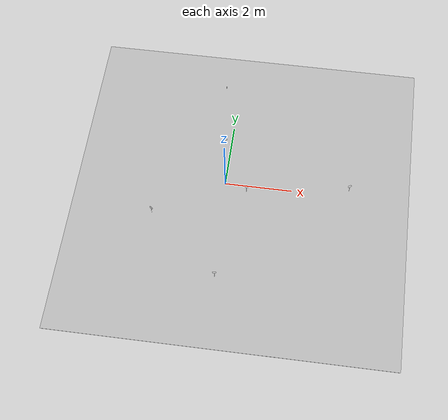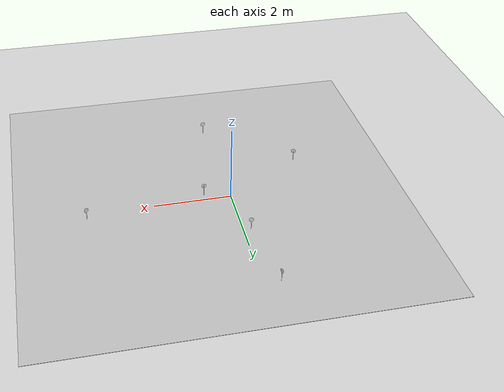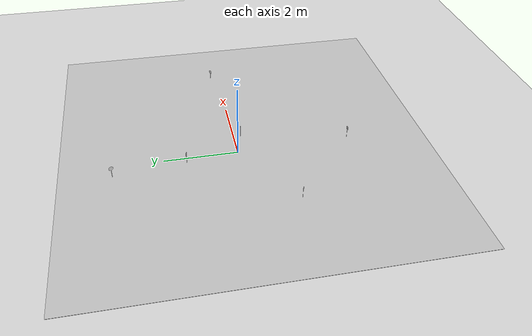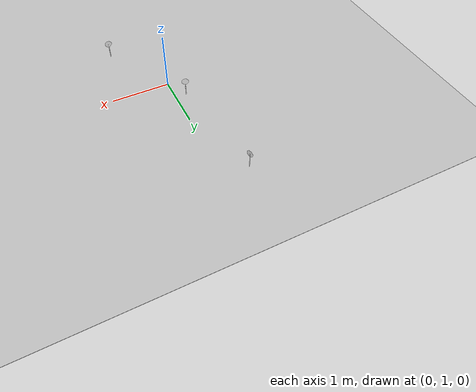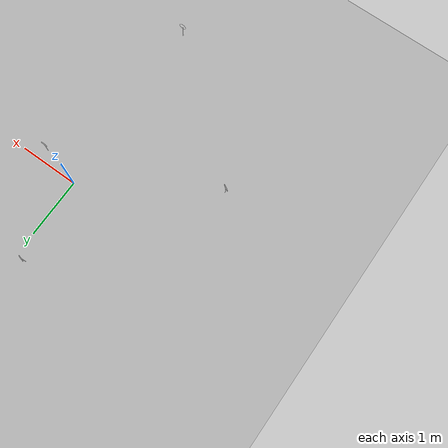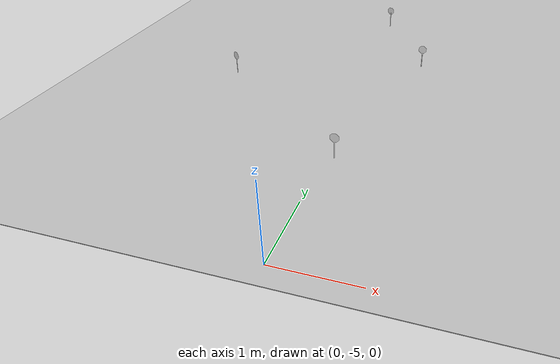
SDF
<sdf version="1.7">
 <world name="default">
  <light name="sun" type="directional">
   <pose>0 0 10 0 -0 0</pose>
   <diffuse>0.8 0.8 0.8 1</diffuse>
   <specular>0.2 0.2 0.2 1</specular>
   <attenuation>
    <range>1000</range>
    <constant>0.9</constant>
    <linear>0.01</linear>
    <quadratic>0.001</quadratic>
   </attenuation>
   <direction>-0.5 0.1 -0.9</direction>
   <spot><inner_angle>0</inner_angle><outer_angle>0</outer_angle><falloff>0</falloff></spot>
  </light>
  <model name="ground_plane">
   <static>1</static>
   <link name="link">
    <collision name="collision">
     <geometry><plane><normal>0 0 1</normal><size>100 100</size></plane></geometry>
     <surface>
      <contact><collide_bitmask>65535</collide_bitmask></contact>
      <friction><ode><mu>100</mu><mu2>50</mu2></ode></friction>
     </surface>
    </collision>
    <visual name="visual">
     <cast_shadows>0</cast_shadows>
     <geometry><plane><normal>0 0 1</normal><size>100 100</size></plane></geometry>
     <material>
      <script><uri>file://media/materials/scripts/gazebo.material</uri><name>Gazebo/Grey</name></script>
     </material>
    </visual>
   </link>
  </model>
  <gravity>0 0 -9.8</gravity>
  <magnetic_field>6e-06 2.3e-05 -4.2e-05</magnetic_field>
  <atmosphere type="adiabatic"/>
  <physics type="ode">
   <max_step_size>0.001</max_step_size>
   <real_time_factor>1</real_time_factor>
   <real_time_update_rate>1000</real_time_update_rate>
  </physics>
  <scene><ambient>0.4 0.4 0.4 1</ambient><background>0.7 0.7 0.7 1</background><shadows>1</shadows></scene>
  <audio><device>default</device></audio>
  <spherical_coordinates>
   <surface_model>EARTH_WGS84</surface_model>
   <latitude_deg>0</latitude_deg>
   <longitude_deg>0</longitude_deg>
   <elevation>0</elevation>
   <heading_deg>0</heading_deg>
  </spherical_coordinates>
  <model name="my_track">
   <static>1</static>
   <link name="link">
    <pose>0 0 0.01 0 -0 0</pose>
    <visual name="visual">
     <geometry><plane><normal>0 0 1</normal><size>10 10</size></plane></geometry>
     <material>
      <script>
       <uri>model://my_track/materials/scripts</uri>
       <uri>model://my_track/materials/textures</uri>
       <name>MyTrack/Image</name>
      </script>
     </material>
    </visual>
   </link>
   <pose>0.524796 -0.272125 0 0 -0 0</pose>
  </model>
  <model name="Stop_Sign">
   <link name="link">
    <inertial>
     <mass>1</mass>
     <inertia><ixx>1</ixx><ixy>0</ixy><ixz>0</ixz><iyy>1</iyy><iyz>0</iyz><izz>1</izz></inertia>
    </inertial>
    <visual name="visual">
     <geometry><mesh><uri>model://stop_sign/meshes/stop_sign.dae</uri><scale>0.2 0.2 0.2</scale></mesh></geometry>
     <material>
      <script>
       <uri>model://stop_sign/materials/scripts</uri>
       <uri>model://stop_sign/materials/textures</uri>
       <name>StopSign/Diffuse</name>
      </script>
      <shader type="pixel"><normal_map>__default__</normal_map></shader>
      <ambient>1 1 1 1</ambient>
      <diffuse>1 1 1 1</diffuse>
      <specular>0 0 0 1</specular>
      <emissive>0 0 0 1</emissive>
     </material>
    </visual>
    <collision name="collision">
     <geometry>
      <mesh><uri>/home/jovanni/.gazebo/models/stop_sign/meshes/stop_sign.dae</uri><scale>1 1 1</scale></mesh>
     </geometry>
     <surface>
      <friction>
       <ode><mu>1</mu><mu2>1</mu2><fdir1>0 0 0</fdir1><slip1>0</slip1><slip2>0</slip2></ode>
       <torsional>
        <coefficient>1</coefficient>
        <patch_radius>0</patch_radius>
        <surface_radius>0</surface_radius>
        <use_patch_radius>1</use_patch_radius>
        <ode><slip>0</slip></ode>
       </torsional>
      </friction>
      <bounce><restitution_coefficient>0</restitution_coefficient><threshold>1e+06</threshold></bounce>
      <contact>
       <collide_without_contact>0</collide_without_contact>
       <collide_without_contact_bitmask>1</collide_without_contact_bitmask>
       <collide_bitmask>1</collide_bitmask>
       <ode>
        <soft_cfm>0</soft_cfm>
        <soft_erp>0.2</soft_erp>
        <kp>1e+13</kp>
        <kd>1</kd>
        <max_vel>0.01</max_vel>
        <min_depth>0</min_depth>
       </ode>
       <bullet>
        <split_impulse>1</split_impulse>
        <split_impulse_penetration_threshold>-0.01</split_impulse_penetration_threshold>
        <soft_cfm>0</soft_cfm>
        <soft_erp>0.2</soft_erp>
        <kp>1e+13</kp>
        <kd>1</kd>
       </bullet>
      </contact>
     </surface>
    </collision>
   </link>
   <static>1</static>
   <pose>0.113357 -3.09615 0 0 -0 0</pose>
  </model>
  <model name="Stop_Sign_0">
   <link name="link">
    <inertial>
     <mass>1</mass>
     <inertia><ixx>1</ixx><ixy>0</ixy><ixz>0</ixz><iyy>1</iyy><iyz>0</iyz><izz>1</izz></inertia>
    </inertial>
    <visual name="visual">
     <geometry><mesh><uri>model://stop_sign/meshes/stop_sign.dae</uri><scale>0.2 0.2 0.2</scale></mesh></geometry>
     <material>
      <script>
       <uri>model://stop_sign/materials/scripts</uri>
       <uri>model://stop_sign/materials/textures</uri>
       <name>StopSign/Diffuse</name>
      </script>
      <shader type="pixel"><normal_map>__default__</normal_map></shader>
      <ambient>1 1 1 1</ambient>
      <diffuse>1 1 1 1</diffuse>
      <specular>0 0 0 1</specular>
      <emissive>0 0 0 1</emissive>
     </material>
    </visual>
    <collision name="collision">
     <geometry>
      <mesh><uri>/home/jovanni/.gazebo/models/stop_sign/meshes/stop_sign.dae</uri><scale>1 1 1</scale></mesh>
     </geometry>
     <surface>
      <friction>
       <ode><mu>1</mu><mu2>1</mu2><fdir1>0 0 0</fdir1><slip1>0</slip1><slip2>0</slip2></ode>
       <torsional>
        <coefficient>1</coefficient>
        <patch_radius>0</patch_radius>
        <surface_radius>0</surface_radius>
        <use_patch_radius>1</use_patch_radius>
        <ode><slip>0</slip></ode>
       </torsional>
      </friction>
      <bounce><restitution_coefficient>0</restitution_coefficient><threshold>1e+06</threshold></bounce>
      <contact>
       <collide_without_contact>0</collide_without_contact>
       <collide_without_contact_bitmask>1</collide_without_contact_bitmask>
       <collide_bitmask>1</collide_bitmask>
       <ode>
        <soft_cfm>0</soft_cfm>
        <soft_erp>0.2</soft_erp>
        <kp>1e+13</kp>
        <kd>1</kd>
        <max_vel>0.01</max_vel>
        <min_depth>0</min_depth>
       </ode>
       <bullet>
        <split_impulse>1</split_impulse>
        <split_impulse_penetration_threshold>-0.01</split_impulse_penetration_threshold>
        <soft_cfm>0</soft_cfm>
        <soft_erp>0.2</soft_erp>
        <kp>1e+13</kp>
        <kd>1</kd>
       </bullet>
      </contact>
     </surface>
    </collision>
   </link>
   <static>1</static>
   <pose>3.72268 0.220207 0 0 -0 0.402193</pose>
  </model>
  <model name="Stop_Sign_1">
   <link name="link">
    <inertial>
     <mass>1</mass>
     <inertia><ixx>1</ixx><ixy>0</ixy><ixz>0</ixz><iyy>1</iyy><iyz>0</iyz><izz>1</izz></inertia>
    </inertial>
    <visual name="visual">
     <geometry><mesh><uri>model://stop_sign/meshes/stop_sign.dae</uri><scale>0.2 0.2 0.2</scale></mesh></geometry>
     <material>
      <script>
       <uri>model://stop_sign/materials/scripts</uri>
       <uri>model://stop_sign/materials/textures</uri>
       <name>StopSign/Diffuse</name>
      </script>
      <shader type="pixel"><normal_map>__default__</normal_map></shader>
      <ambient>1 1 1 1</ambient>
      <diffuse>1 1 1 1</diffuse>
      <specular>0 0 0 1</specular>
      <emissive>0 0 0 1</emissive>
     </material>
    </visual>
    <collision name="collision">
     <geometry>
      <mesh><uri>/home/jovanni/.gazebo/models/stop_sign/meshes/stop_sign.dae</uri><scale>1 1 1</scale></mesh>
     </geometry>
     <surface>
      <friction>
       <ode><mu>1</mu><mu2>1</mu2><fdir1>0 0 0</fdir1><slip1>0</slip1><slip2>0</slip2></ode>
       <torsional>
        <coefficient>1</coefficient>
        <patch_radius>0</patch_radius>
        <surface_radius>0</surface_radius>
        <use_patch_radius>1</use_patch_radius>
        <ode><slip>0</slip></ode>
       </torsional>
      </friction>
      <bounce><restitution_coefficient>0</restitution_coefficient><threshold>1e+06</threshold></bounce>
      <contact>
       <collide_without_contact>0</collide_without_contact>
       <collide_without_contact_bitmask>1</collide_without_contact_bitmask>
       <collide_bitmask>1</collide_bitmask>
       <ode>
        <soft_cfm>0</soft_cfm>
        <soft_erp>0.2</soft_erp>
        <kp>1e+13</kp>
        <kd>1</kd>
        <max_vel>0.01</max_vel>
        <min_depth>0</min_depth>
       </ode>
       <bullet>
        <split_impulse>1</split_impulse>
        <split_impulse_penetration_threshold>-0.01</split_impulse_penetration_threshold>
        <soft_cfm>0</soft_cfm>
        <soft_erp>0.2</soft_erp>
        <kp>1e+13</kp>
        <kd>1</kd>
       </bullet>
      </contact>
     </surface>
    </collision>
   </link>
   <static>1</static>
   <pose>0.668489 -0.189392 0 0 -0 0</pose>
  </model>
  <model name="Stop_Sign_2">
   <link name="link">
    <inertial>
     <mass>1</mass>
     <inertia><ixx>1</ixx><ixy>0</ixy><ixz>0</ixz><iyy>1</iyy><iyz>0</iyz><izz>1</izz></inertia>
    </inertial>
    <visual name="visual">
     <geometry><mesh><uri>model://stop_sign/meshes/stop_sign.dae</uri><scale>0.2 0.2 0.2</scale></mesh></geometry>
     <material>
      <script>
       <uri>model://stop_sign/materials/scripts</uri>
       <uri>model://stop_sign/materials/textures</uri>
       <name>StopSign/Diffuse</name>
      </script>
      <shader type="pixel"><normal_map>__default__</normal_map></shader>
      <ambient>1 1 1 1</ambient>
      <diffuse>1 1 1 1</diffuse>
      <specular>0 0 0 1</specular>
      <emissive>0 0 0 1</emissive>
     </material>
    </visual>
    <collision name="collision">
     <geometry>
      <mesh><uri>/home/jovanni/.gazebo/models/stop_sign/meshes/stop_sign.dae</uri><scale>1 1 1</scale></mesh>
     </geometry>
     <surface>
      <friction>
       <ode><mu>1</mu><mu2>1</mu2><fdir1>0 0 0</fdir1><slip1>0</slip1><slip2>0</slip2></ode>
       <torsional>
        <coefficient>1</coefficient>
        <patch_radius>0</patch_radius>
        <surface_radius>0</surface_radius>
        <use_patch_radius>1</use_patch_radius>
        <ode><slip>0</slip></ode>
       </torsional>
      </friction>
      <bounce><restitution_coefficient>0</restitution_coefficient><threshold>1e+06</threshold></bounce>
      <contact>
       <collide_without_contact>0</collide_without_contact>
       <collide_without_contact_bitmask>1</collide_without_contact_bitmask>
       <collide_bitmask>1</collide_bitmask>
       <ode>
        <soft_cfm>0</soft_cfm>
        <soft_erp>0.2</soft_erp>
        <kp>1e+13</kp>
        <kd>1</kd>
        <max_vel>0.01</max_vel>
        <min_depth>0</min_depth>
       </ode>
       <bullet>
        <split_impulse>1</split_impulse>
        <split_impulse_penetration_threshold>-0.01</split_impulse_penetration_threshold>
        <soft_cfm>0</soft_cfm>
        <soft_erp>0.2</soft_erp>
        <kp>1e+13</kp>
        <kd>1</kd>
       </bullet>
      </contact>
     </surface>
    </collision>
   </link>
   <static>1</static>
   <pose>-0.18846 1.40097 0 0 -0 2.8299</pose>
  </model>
  <model name="Stop_Sign_3">
   <link name="link">
    <inertial>
     <mass>1</mass>
     <inertia><ixx>1</ixx><ixy>0</ixy><ixz>0</ixz><iyy>1</iyy><iyz>0</iyz><izz>1</izz></inertia>
    </inertial>
    <visual name="visual">
     <geometry><mesh><uri>model://stop_sign/meshes/stop_sign.dae</uri><scale>0.2 0.2 0.2</scale></mesh></geometry>
     <material>
      <script>
       <uri>model://stop_sign/materials/scripts</uri>
       <uri>model://stop_sign/materials/textures</uri>
       <name>StopSign/Diffuse</name>
      </script>
      <shader type="pixel"><normal_map>__default__</normal_map></shader>
      <ambient>1 1 1 1</ambient>
      <diffuse>1 1 1 1</diffuse>
      <specular>0 0 0 1</specular>
      <emissive>0 0 0 1</emissive>
     </material>
    </visual>
    <collision name="collision">
     <geometry>
      <mesh><uri>/home/jovanni/.gazebo/models/stop_sign/meshes/stop_sign.dae</uri><scale>1 1 1</scale></mesh>
     </geometry>
     <surface>
      <friction>
       <ode><mu>1</mu><mu2>1</mu2><fdir1>0 0 0</fdir1><slip1>0</slip1><slip2>0</slip2></ode>
       <torsional>
        <coefficient>1</coefficient>
        <patch_radius>0</patch_radius>
        <surface_radius>0</surface_radius>
        <use_patch_radius>1</use_patch_radius>
        <ode><slip>0</slip></ode>
       </torsional>
      </friction>
      <bounce><restitution_coefficient>0</restitution_coefficient><threshold>1e+06</threshold></bounce>
      <contact>
       <collide_without_contact>0</collide_without_contact>
       <collide_without_contact_bitmask>1</collide_without_contact_bitmask>
       <collide_bitmask>1</collide_bitmask>
       <ode>
        <soft_cfm>0</soft_cfm>
        <soft_erp>0.2</soft_erp>
        <kp>1e+13</kp>
        <kd>1</kd>
        <max_vel>0.01</max_vel>
        <min_depth>0</min_depth>
       </ode>
       <bullet>
        <split_impulse>1</split_impulse>
        <split_impulse_penetration_threshold>-0.01</split_impulse_penetration_threshold>
        <soft_cfm>0</soft_cfm>
        <soft_erp>0.2</soft_erp>
        <kp>1e+13</kp>
        <kd>1</kd>
       </bullet>
      </contact>
     </surface>
    </collision>
   </link>
   <static>1</static>
   <pose>-2.03366 -1.26061 0 0 0 -0.522522</pose>
  </model>
  <model name="Stop_Sign_4">
   <link name="link">
    <inertial>
     <mass>1</mass>
     <inertia><ixx>1</ixx><ixy>0</ixy><ixz>0</ixz><iyy>1</iyy><iyz>0</iyz><izz>1</izz></inertia>
    </inertial>
    <visual name="visual">
     <geometry><mesh><uri>model://stop_sign/meshes/stop_sign.dae</uri><scale>0.2 0.2 0.2</scale></mesh></geometry>
     <material>
      <script>
       <uri>model://stop_sign/materials/scripts</uri>
       <uri>model://stop_sign/materials/textures</uri>
       <name>StopSign/Diffuse</name>
      </script>
      <shader type="pixel"><normal_map>__default__</normal_map></shader>
      <ambient>1 1 1 1</ambient>
      <diffuse>1 1 1 1</diffuse>
      <specular>0 0 0 1</specular>
      <emissive>0 0 0 1</emissive>
     </material>
    </visual>
    <collision name="collision">
     <geometry>
      <mesh><uri>/home/jovanni/.gazebo/models/stop_sign/meshes/stop_sign.dae</uri><scale>1 1 1</scale></mesh>
     </geometry>
     <surface>
      <friction>
       <ode><mu>1</mu><mu2>1</mu2><fdir1>0 0 0</fdir1><slip1>0</slip1><slip2>0</slip2></ode>
       <torsional>
        <coefficient>1</coefficient>
        <patch_radius>0</patch_radius>
        <surface_radius>0</surface_radius>
        <use_patch_radius>1</use_patch_radius>
        <ode><slip>0</slip></ode>
       </torsional>
      </friction>
      <bounce><restitution_coefficient>0</restitution_coefficient><threshold>1e+06</threshold></bounce>
      <contact>
       <collide_without_contact>0</collide_without_contact>
       <collide_without_contact_bitmask>1</collide_without_contact_bitmask>
       <collide_bitmask>1</collide_bitmask>
       <ode>
        <soft_cfm>0</soft_cfm>
        <soft_erp>0.2</soft_erp>
        <kp>1e+13</kp>
        <kd>1</kd>
        <max_vel>0.01</max_vel>
        <min_depth>0</min_depth>
       </ode>
       <bullet>
        <split_impulse>1</split_impulse>
        <split_impulse_penetration_threshold>-0.01</split_impulse_penetration_threshold>
        <soft_cfm>0</soft_cfm>
        <soft_erp>0.2</soft_erp>
        <kp>1e+13</kp>
        <kd>1</kd>
       </bullet>
      </contact>
     </surface>
    </collision>
   </link>
   <static>1</static>
   <pose>-0.413954 3.34452 0 0 0 -1.23098</pose>
  </model>
 </world>
</sdf>
